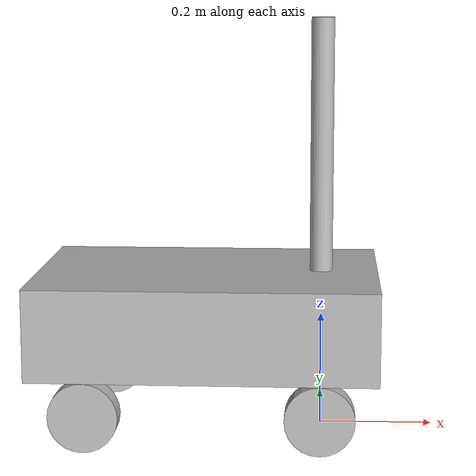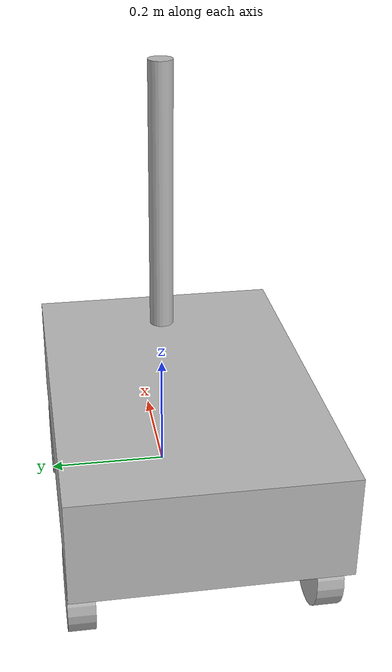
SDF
<?xml version="1.0" ?>
<sdf version="1.5">
  <model name="turtlebot3_burger">
    <pose>0.0 0.0 0.0 0.0 0.0 0.0</pose>

    <link name="base_footprint"/>

    <link name="base_link">

      <inertial>
        <pose>-0.2 0 0.2 0 0 0</pose>
        <inertia>
          <ixx>7.2397393e-01</ixx>
          <ixy>4.686399e-10</ixy>
          <ixz>-1.09525703e-08</ixz>
          <iyy>7.2397393e-01</iyy>
          <iyz>2.8582649e-09</iyz>
          <izz>6.53050163e-01</izz>
        </inertia>
        <mass>8.2573504e-01</mass>
      </inertial>
      <collision name="base_collision">
        <pose>-0.2 0.0 0.2 0 0 0</pose>
        <geometry>
          <box>
            <size>0.6 0.4 0.16</size>
          </box>
        </geometry>
      </collision>

      <visual name="base_visual">
        <pose>-0.2 0.0 0.2 0 0 0</pose>
        <geometry>
          <box>
            <size>0.6 0.4 0.16</size>
          </box>
        </geometry>
      </visual>
    </link>

    <link name="imu_link">
      <sensor name="tb3_imu" type="imu">
        <always_on>true</always_on>
        <update_rate>200</update_rate>
        <imu>
          <angular_velocity>
            <x>
              <noise type="gaussian">
                <mean>0.0</mean>
                <stddev>2e-4</stddev>
              </noise>
            </x>
            <y>
              <noise type="gaussian">
                <mean>0.0</mean>
                <stddev>2e-4</stddev>
              </noise>
            </y>
            <z>
              <noise type="gaussian">
                <mean>0.0</mean>
                <stddev>2e-4</stddev>
              </noise>
            </z>
          </angular_velocity>
          <linear_acceleration>
            <x>
              <noise type="gaussian">
                <mean>0.0</mean>
                <stddev>1.7e-2</stddev>
              </noise>
            </x>
            <y>
              <noise type="gaussian">
                <mean>0.0</mean>
                <stddev>1.7e-2</stddev>
              </noise>
            </y>
            <z>
              <noise type="gaussian">
                <mean>0.0</mean>
                <stddev>1.7e-2</stddev>
              </noise>
            </z>
          </linear_acceleration>
        </imu>
        <plugin name="turtlebot3_imu" filename="libgazebo_ros_imu_sensor.so">
          <ros>
            <remapping>~/out:=imu</remapping>
          </ros>
        </plugin>
      </sensor>
    </link>

    <link name="wheel_left_link">

      <inertial>
        <pose>0 0.18 0.06 -1.57 0 0</pose>
        <inertia>
          <ixx>1.8158194e-03</ixx>
          <ixy>-9.3392e-12</ixy>
          <ixz>1.04909e-11</ixz>
          <iyy>3.2922126e-03</iyy>
          <iyz>5.75694e-11</iyz>
          <izz>1.8158194e-03</izz>
        </inertia>
        <mass>2.8498940e-02</mass>
      </inertial>

      <collision name="wheel_left_collision">
        <pose>0 0.18 0.06 -1.57 0 0</pose>
        <geometry>
          <cylinder>
            <radius>0.06</radius>
            <length>0.04</length>
          </cylinder>
        </geometry>
        <surface>
          <!-- This friction pamareter don't contain reliable data!! -->
          <friction>
            <ode>
              <mu>100000.0</mu>
              <mu2>100000.0</mu2>
              <fdir1>0 0 0</fdir1>
              <slip1>0.0</slip1>
              <slip2>0.0</slip2>
            </ode>
          </friction>
          <contact>
            <ode>
              <soft_cfm>0</soft_cfm>
              <soft_erp>0.2</soft_erp>
              <kp>1e+5</kp>
              <kd>1</kd>
              <max_vel>0.01</max_vel>
              <min_depth>0.001</min_depth>
            </ode>
          </contact>
        </surface>
      </collision>

      <visual name="wheel_left_visual">
        <pose>0 0.18 0.06 -1.57 0 0</pose>
        <geometry>
          <cylinder>
            <radius>0.06</radius>
            <length>0.04</length>
          </cylinder>
        </geometry>
      </visual>
    </link>

    <link name="wheel_right_link">

      <inertial>
        <pose>0 -0.18 0.06 -1.57 0 0</pose>
        <inertia>
          <ixx>1.8158194e-03</ixx>
          <ixy>-9.3392e-12</ixy>
          <ixz>1.04909e-11</ixz>
          <iyy>3.2922126e-03</iyy>
          <iyz>5.75694e-11</iyz>
          <izz>1.8158194e-03</izz>
        </inertia>
        <mass>2.8498940e-02</mass>
      </inertial>

      <collision name="wheel_right_collision">
        <pose>0 -0.18 0.06 -1.57 0 0</pose>
        <geometry>
          <cylinder>
            <radius>0.06</radius>
            <length>0.04</length>
          </cylinder>
        </geometry>
        <surface>
          <!-- This friction pamareter don't contain reliable data!! -->
          <friction>
            <ode>
              <mu>100000.0</mu>
              <mu2>100000.0</mu2>
              <fdir1>0 0 0</fdir1>
              <slip1>0.0</slip1>
              <slip2>0.0</slip2>
            </ode>
          </friction>
          <contact>
            <ode>
              <soft_cfm>0</soft_cfm>
              <soft_erp>0.2</soft_erp>
              <kp>1e+5</kp>
              <kd>1</kd>
              <max_vel>0.01</max_vel>
              <min_depth>0.001</min_depth>
            </ode>
          </contact>
        </surface>
      </collision>

      <visual name="wheel_right_visual">
        <pose>0 -0.18 0.06 -1.57 0 0</pose>
        <geometry>
          <cylinder>
            <radius>0.06</radius>
            <length>0.04</length>
          </cylinder>
        </geometry>
      </visual>
    </link>

<link name="wheel_left_back_link">

      <inertial>
        <pose>-0.4 0.18 0.06  -1.57 0 0</pose>
        <inertia>
          <ixx>1.8158194e-03</ixx>
          <ixy>-9.3392e-12</ixy>
          <ixz>1.04909e-11</ixz>
          <iyy>3.2922126e-03</iyy>
          <iyz>5.75694e-11</iyz>
          <izz>1.8158194e-03</izz>
        </inertia>
        <mass>2.8498940e-02</mass>
      </inertial>

      <collision name="wheel_left_collision">
        <pose>-0.4 0.18 0.06  -1.57 0 0</pose>
        <geometry>
          <cylinder>
            <radius>0.06</radius>
            <length>0.04</length>
          </cylinder>
        </geometry>
        <surface>
          <!-- This friction pamareter don't contain reliable data!! -->
          <friction>
            <ode>
              <mu>100000.0</mu>
              <mu2>100000.0</mu2>
              <fdir1>0 0 0</fdir1>
              <slip1>0.0</slip1>
              <slip2>0.0</slip2>
            </ode>
          </friction>
          <contact>
            <ode>
              <soft_cfm>0</soft_cfm>
              <soft_erp>0.2</soft_erp>
              <kp>1e+5</kp>
              <kd>1</kd>
              <max_vel>0.01</max_vel>
              <min_depth>0.001</min_depth>
            </ode>
          </contact>
        </surface>
      </collision>

      <visual name="wheel_left_visual">
        <pose>-0.4 0.18 0.06  -1.57 0 0</pose>
        <geometry>
          <cylinder>
            <radius>0.06</radius>
            <length>0.04</length>
          </cylinder>
        </geometry>
      </visual>
    </link>

    <link name="wheel_right_back_link">

      <inertial>
        <pose>-0.4 -0.18 0.06 -1.57 0 0</pose>
        <inertia>
          <ixx>1.8158194e-03</ixx>
          <ixy>-9.3392e-12</ixy>
          <ixz>1.04909e-11</ixz>
          <iyy>3.2922126e-03</iyy>
          <iyz>5.75694e-11</iyz>
          <izz>1.8158194e-03</izz>
        </inertia>
        <mass>2.8498940e-02</mass>
      </inertial>

      <collision name="wheel_right_collision">
        <pose>-0.4 -0.18 0.06 -1.57 0 0</pose>
        <geometry>
          <cylinder>
            <radius>0.06</radius>
            <length>0.04</length>
          </cylinder>
        </geometry>
        <surface>
          <!-- This friction pamareter don't contain reliable data!! -->
          <friction>
            <ode>
              <mu>100000.0</mu>
              <mu2>100000.0</mu2>
              <fdir1>0 0 0</fdir1>
              <slip1>0.0</slip1>
              <slip2>0.0</slip2>
            </ode>
          </friction>
          <contact>
            <ode>
              <soft_cfm>0</soft_cfm>
              <soft_erp>0.2</soft_erp>
              <kp>1e+5</kp>
              <kd>1</kd>
              <max_vel>0.01</max_vel>
              <min_depth>0.001</min_depth>
            </ode>
          </contact>
        </surface>
      </collision>

      <visual name="wheel_right_visual">
        <pose>-0.4 -0.18 0.06 -1.57 0 0</pose>
        <geometry>
          <cylinder>
            <radius>0.06</radius>
            <length>0.04</length>
          </cylinder>
        </geometry>
      </visual>
    </link>

    <joint name="base_joint" type="fixed">
      <parent>base_footprint</parent>
      <child>base_link</child>
      <pose>0.0 0.0 0.0 0 0 0</pose>
    </joint>
<!-- 这里轮子用fixed的原因是，不想让它在坡上的时候也能滑动 -->
    <joint name="wheel_left_joint" type="fixed">
      <parent>base_link</parent>
      <child>wheel_left_link</child>
      <pose>0 0.18 0.06 -1.57 0 0</pose>
      <axis>
        <xyz>0 0 1</xyz>
      </axis>
    </joint>

    <joint name="wheel_right_joint" type="fixed">
      <parent>base_link</parent>
      <child>wheel_right_link</child>
      <pose>0 -0.18 0.06 -1.57 0 0</pose>
      <axis>
        <xyz>0 0 1</xyz>
      </axis>
    </joint>

    <joint name="wheel_left_back_joint" type="fixed">
      <parent>base_link</parent>
      <child>wheel_left_back_link</child>
      <pose>-0.4 0.18 0.06  -1.57 0 0</pose>
      <axis>
        <xyz>0 0 1</xyz>
      </axis>
    </joint>

    <joint name="wheel_right_back_joint" type="fixed">
      <parent>base_link</parent>
      <child>wheel_right_back_link</child>
      <pose>-0.4 -0.18 0.06 -1.57 0 0</pose>
      <axis>
        <xyz>0 0 1</xyz>
      </axis>
    </joint>

    <link name="support">
      <inertial>
        <pose>0 0 0.5025 0 0 0</pose>
        <inertia>
          <ixx>1.8158194e-03</ixx>
          <ixy>-9.3392e-12</ixy>
          <ixz>1.04909e-11</ixz>
          <iyy>3.2922126e-03</iyy>
          <iyz>5.75694e-11</iyz>
          <izz>1.8158194e-03</izz>
        </inertia>
        <mass>2.8498940e-02</mass>
      </inertial>

      <collision name="support_collision">
        <pose>0 0 0.5025 0 0 0</pose>
        <geometry>
          <cylinder>
            <radius>0.02</radius>
            <length>0.045</length>
          </cylinder>
        </geometry>
      </collision>

      <visual name="support_visual">
        <pose>0 0 0.5025 0 0 0</pose>
        <geometry>
          <cylinder>
            <radius>0.02</radius>
            <length>0.445</length>
          </cylinder>
        </geometry>
      </visual>
    </link>
    <joint name="support_joint" type="fixed">
      <parent>base_link</parent>
      <child>support</child>
      <pose>0 0 0.28 0 0 0</pose>
      <axis>
        <xyz>0 0 1</xyz>
      </axis>
    </joint>

  </model>
</sdf>
